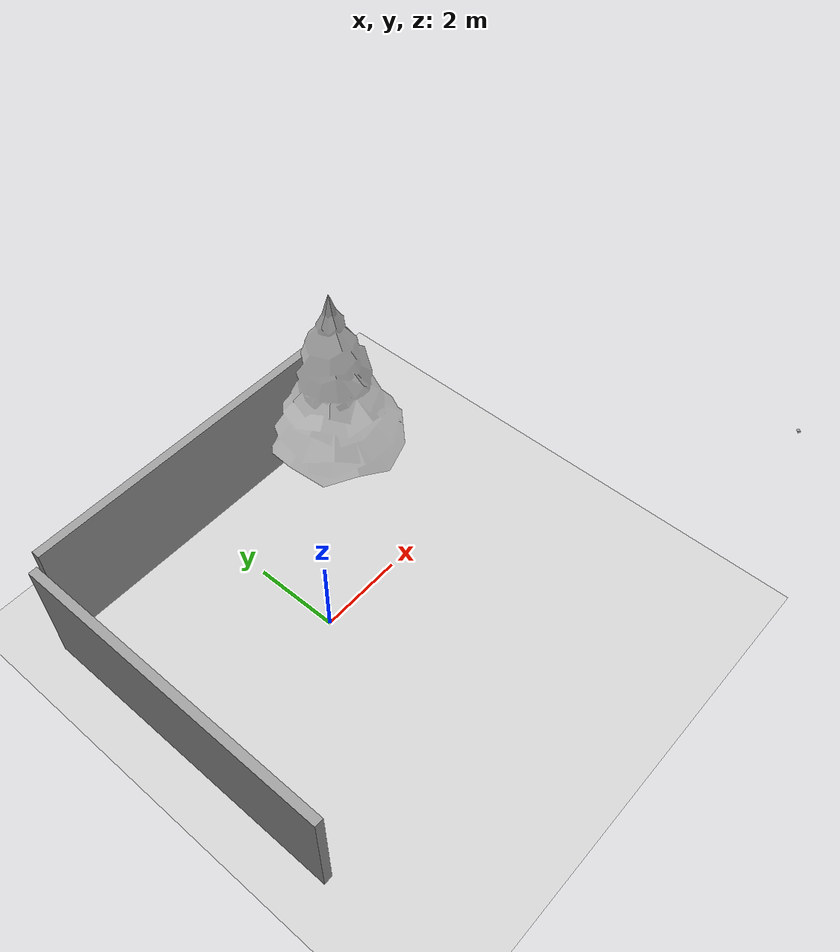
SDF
<sdf version="1.6">
 <world name="wheeltec_target_follow">
  <include><uri>model://ground_plane</uri></include>
  <include><uri>model://sun</uri></include>
  <include><name>wall_back</name><uri>model://grey_wall</uri><pose>0 4.0 0 0 0 0</pose></include>
  <include><name>wall_side</name><uri>model://grey_wall</uri><pose>-4.0 0 0 0 0 1.5708</pose></include>
  <include><name>pine_tree</name><uri>model://pine_tree</uri><pose>3.5 3.0 0 0 0 0</pose></include>
  <model name="scene_camera">
   <static>true</static>
   <pose>6.0 -6.0 5.5 0 0.55 2.356</pose>
   <link name="link">
    <visual name="vis"><geometry><box><size>0.05 0.05 0.05</size></box></geometry></visual>
    <sensor type="camera" name="scene_cam">
     <always_on>true</always_on>
     <update_rate>15</update_rate>
     <camera name="scene">
      <horizontal_fov>1.05</horizontal_fov>
      <image><width>960</width><height>540</height><format>R8G8B8</format></image>
      <clip><near>0.1</near><far>100</far></clip>
     </camera>
     <plugin name="scene_cam_controller" filename="libgazebo_ros_camera.so">
      <ros>
       <namespace>/sim_scene/chassis</namespace>
       <remapping>scene/image_raw:=image_raw</remapping>
       <remapping>scene/camera_info:=camera_info</remapping>
      </ros>
      <camera_name>scene</camera_name>
      <frame_name>scene_camera</frame_name>
     </plugin>
    </sensor>
   </link>
  </model>
  <physics name="default_physics" default="0" type="ode">
   <max_step_size>0.001</max_step_size>
   <real_time_factor>1.0</real_time_factor>
   <real_time_update_rate>1000</real_time_update_rate>
  </physics>
 </world>
</sdf>

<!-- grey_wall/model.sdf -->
<sdf version="1.5">
  <model name="grey_wall">
    <static>true</static>
    <link name="link">
      <pose>0 0 1.4 0 0 0</pose>
      <collision name="collision">
        <geometry>
          <box>
            <size>7.5 0.2 2.8</size>
          </box>
        </geometry>
      </collision>
      <visual name="visual">
        <cast_shadows>false</cast_shadows>
        <geometry>
          <box>
            <size>7.5 0.2 2.8</size>
          </box>
        </geometry>
        <material>
          <script>
            <uri>model://../model_source/models/grey_wall/materials/scripts</uri>
            <uri>model://../model_source/models/grey_wall/materials/textures</uri>
            <name>vrc/grey_wall</name>
          </script>
        </material>
      </visual>
    </link>
  </model>
</sdf>

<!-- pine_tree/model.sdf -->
<sdf version="1.6">
  <model name="pine_tree">
    <static>true</static>
    <link name="link">
      <collision name="collision">
        <geometry>
          <mesh>
            <uri>file://isr-testbed/pine_tree/meshes/pine_tree.dae</uri>
          </mesh>
        </geometry>
      </collision>
      <visual name="branch">
        <geometry>
          <mesh>
            <uri>file://isr-testbed/pine_tree/meshes/pine_tree.dae</uri>
            <submesh>
              <name>Branch</name>
            </submesh>
          </mesh>
        </geometry>
        <material>
          <script>
            <uri>file://isr-testbed/pine_tree/materials/scripts/</uri>
            <uri>file://isr-testbed/pine_tree/materials/textures/</uri>
            <name>PineTree/Branch</name>
          </script>
        </material>
      </visual>
      <visual name="bark">
        <geometry>
          <mesh>
            <uri>file://isr-testbed/pine_tree/meshes/pine_tree.dae</uri>
            <submesh>
              <name>Bark</name>
            </submesh>
          </mesh>
        </geometry>
        <material>
          <script>
            <uri>file://isr-testbed/pine_tree/materials/scripts/</uri>
            <uri>file://isr-testbed/pine_tree/materials/textures/</uri>
            <name>PineTree/Bark</name>
          </script>
        </material>
      </visual>
    </link>
  </model>
</sdf>
